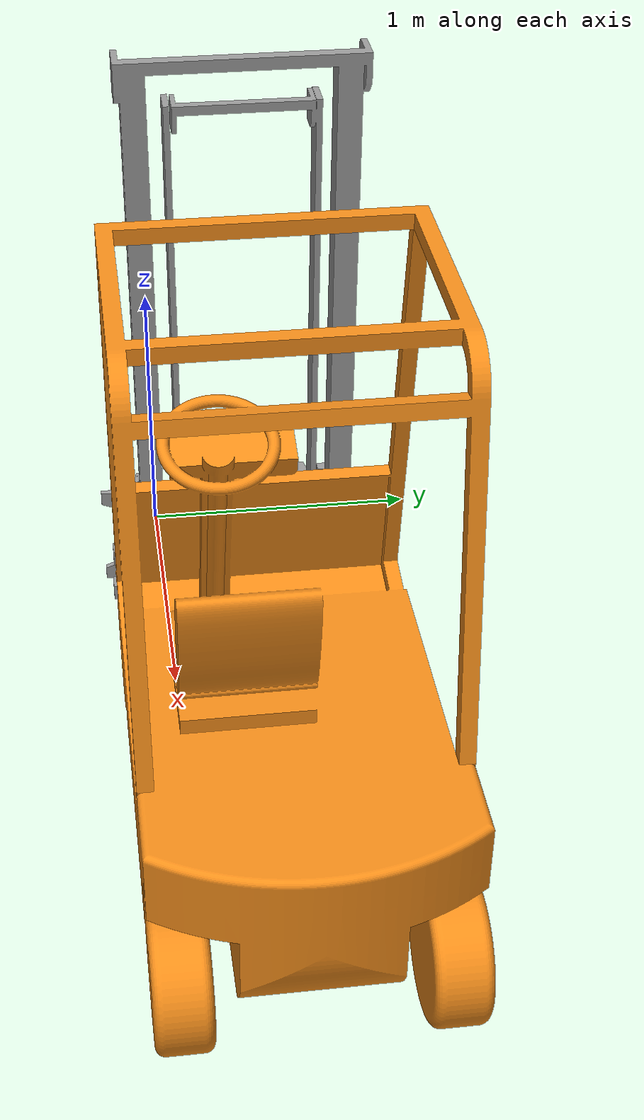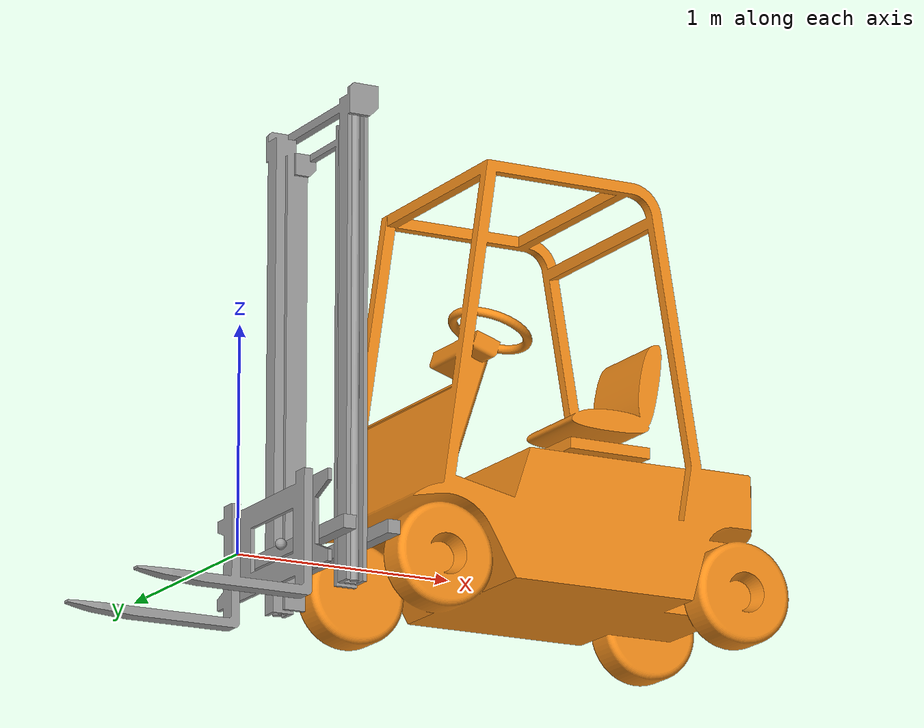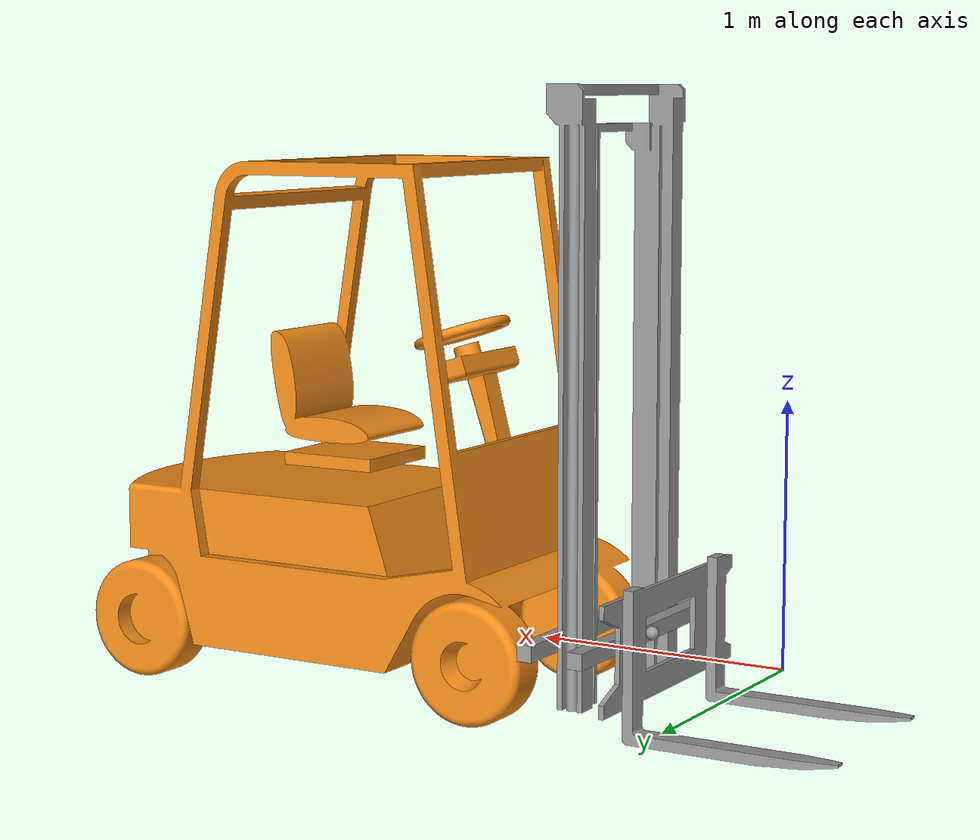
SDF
<?xml version='1.0'?>
<sdf version='1.6'>
  <model name='forklift'>
  <plugin name="ForkLiftPlugin" filename="libForkLiftPlugin.so"/>
    <link name='link_1_clone'>
      <pose frame=''>-0.489405 -0.319301 -0.156667 0 -0 0</pose>
      <inertial>
        <mass>5</mass>
        <inertia>
          <ixx>0.166667</ixx>
          <ixy>0</ixy>
          <ixz>0</ixz>
          <iyy>0.166667</iyy>
          <iyz>0</iyz>
          <izz>0.166667</izz>
        </inertia>
        <pose frame=''>0 0 0 0 -0 0</pose>
      </inertial>
      <self_collide>0</self_collide>
      <kinematic>0</kinematic>
      <gravity>1</gravity>
      <visual name='visual'>
        <pose frame=''>0 0 0 0 -0 0</pose>
        <geometry>
          <mesh>
            <uri>stl/Channel.stl</uri>
            <scale>0.001 0.001 0.001</scale>
          </mesh>
        </geometry>
        <material>
          <lighting>1</lighting>
          <script>
            <uri>file://media/materials/scripts/gazebo.material</uri>
            <name>Gazebo/Grey</name>
          </script>
          <ambient>0.3 0.3 0.3 1</ambient>
          <diffuse>0.7 0.7 0.7 1</diffuse>
          <specular>0.01 0.01 0.01 1</specular>
          <emissive>0 0 0 1</emissive>
          <shader type='vertex'>
            <normal_map>__default__</normal_map>
          </shader>
        </material>
        <cast_shadows>1</cast_shadows>
        <transparency>0</transparency>
      </visual>
      <collision name='collision'>
        <laser_retro>0</laser_retro>
        <max_contacts>10</max_contacts>
        <pose frame=''>0 0 0 0 -0 0</pose>
        <geometry>
          <mesh>
            <uri>stl/Channel.stl</uri>
          </mesh>
        </geometry>
        <surface>
          <friction>
            <ode>
              <mu>1</mu>
              <mu2>1</mu2>
              <fdir1>0 0 0</fdir1>
              <slip1>0</slip1>
              <slip2>0</slip2>
            </ode>
            <torsional>
              <coefficient>1</coefficient>
              <patch_radius>0</patch_radius>
              <surface_radius>0</surface_radius>
              <use_patch_radius>1</use_patch_radius>
              <ode>
                <slip>0</slip>
              </ode>
            </torsional>
          </friction>
          <bounce>
            <restitution_coefficient>0</restitution_coefficient>
            <threshold>1e+06</threshold>
          </bounce>
          <contact>
            <collide_without_contact>0</collide_without_contact>
            <collide_without_contact_bitmask>1</collide_without_contact_bitmask>
            <collide_bitmask>1</collide_bitmask>
            <ode>
              <soft_cfm>0</soft_cfm>
              <soft_erp>0.2</soft_erp>
              <kp>1e+13</kp>
              <kd>1</kd>
              <max_vel>0.01</max_vel>
              <min_depth>0</min_depth>
            </ode>
            <bullet>
              <split_impulse>1</split_impulse>
              <split_impulse_penetration_threshold>-0.01</split_impulse_penetration_threshold>
              <soft_cfm>0</soft_cfm>
              <soft_erp>0.2</soft_erp>
              <kp>1e+13</kp>
              <kd>1</kd>
            </bullet>
          </contact>
        </surface>
      </collision>
    </link>
    <link name='link_2_clone'>
      <pose frame=''>-0.609405 -0.319301 -0.156667 0 -0 0</pose>
      <inertial>
        <mass>2</mass>
        <inertia>
          <ixx>0.166667</ixx>
          <ixy>0</ixy>
          <ixz>0</ixz>
          <iyy>0.166667</iyy>
          <iyz>0</iyz>
          <izz>0.166667</izz>
        </inertia>
        <pose frame=''>0 0 0 0 -0 0</pose>
      </inertial>
      <self_collide>0</self_collide>
      <kinematic>0</kinematic>
      <gravity>1</gravity>
      <visual name='visual'>
        <pose frame=''>0 0 0 0 -0 0</pose>
        <geometry>
          <mesh>
            <uri>stl/Fork.stl</uri>
            <scale>0.001 0.001 0.001</scale>
          </mesh>
        </geometry>
        <material>
          <lighting>1</lighting>
          <script>
            <uri>file://media/materials/scripts/gazebo.material</uri>
            <name>Gazebo/Grey</name>
          </script>
          <ambient>0.3 0.3 0.3 1</ambient>
          <diffuse>0.7 0.7 0.7 1</diffuse>
          <specular>0.01 0.01 0.01 1</specular>
          <emissive>0 0 0 1</emissive>
          <shader type='vertex'>
            <normal_map>__default__</normal_map>
          </shader>
        </material>
        <cast_shadows>1</cast_shadows>
        <transparency>0</transparency>
      </visual>
      <collision name='collision'>
        <laser_retro>0</laser_retro>
        <max_contacts>10</max_contacts>
        <pose frame=''>0 0 0 0 -0 0</pose>
        <geometry>
          <mesh>
            <uri>stl/Fork.stl</uri>
          </mesh>
        </geometry>
        <surface>
          <friction>
            <ode>
              <mu>1</mu>
              <mu2>1</mu2>
              <fdir1>0 0 0</fdir1>
              <slip1>0</slip1>
              <slip2>0</slip2>
            </ode>
            <torsional>
              <coefficient>1</coefficient>
              <patch_radius>0</patch_radius>
              <surface_radius>0</surface_radius>
              <use_patch_radius>1</use_patch_radius>
              <ode>
                <slip>0</slip>
              </ode>
            </torsional>
          </friction>
          <bounce>
            <restitution_coefficient>0</restitution_coefficient>
            <threshold>1e+06</threshold>
          </bounce>
          <contact>
            <collide_without_contact>0</collide_without_contact>
            <collide_without_contact_bitmask>1</collide_without_contact_bitmask>
            <collide_bitmask>1</collide_bitmask>
            <ode>
              <soft_cfm>0</soft_cfm>
              <soft_erp>0.2</soft_erp>
              <kp>1e+13</kp>
              <kd>1</kd>
              <max_vel>0.01</max_vel>
              <min_depth>0</min_depth>
            </ode>
            <bullet>
              <split_impulse>1</split_impulse>
              <split_impulse_penetration_threshold>-0.01</split_impulse_penetration_threshold>
              <soft_cfm>0</soft_cfm>
              <soft_erp>0.2</soft_erp>
              <kp>1e+13</kp>
              <kd>1</kd>
            </bullet>
          </contact>
        </surface>
      </collision>
    </link>
    <link name='link_3_clone'>
      <pose frame=''>-0.339405 -0.319301 -0.156667 0 -0 0</pose>
      <inertial>
        <mass>30</mass>
        <inertia>
          <ixx>0.166667</ixx>
          <ixy>0</ixy>
          <ixz>0</ixz>
          <iyy>0.166667</iyy>
          <iyz>0</iyz>
          <izz>0.166667</izz>
        </inertia>
        <pose frame=''>0 0 0 0 -0 0</pose>
      </inertial>
      <self_collide>0</self_collide>
      <kinematic>0</kinematic>
      <gravity>1</gravity>
      <visual name='visual'>
        <pose frame=''>0 0 0 0 -0 0</pose>
        <geometry>
          <mesh>
            <uri>stl/Body.stl</uri>
            <scale>0.001 0.001 0.001</scale>
          </mesh>
        </geometry>
        <material>
          <lighting>1</lighting>
          <script>
            <uri>file://media/materials/scripts/gazebo.material</uri>
            <name>Gazebo/Orange</name>
          </script>
          <ambient>0.3 0.3 0.3 1</ambient>
          <diffuse>0.7 0.7 0.7 1</diffuse>
          <specular>0.01 0.01 0.01 1</specular>
          <emissive>0 0 0 1</emissive>
          <shader type='vertex'>
            <normal_map>__default__</normal_map>
          </shader>
        </material>
        <cast_shadows>0</cast_shadows>
        <transparency>0</transparency>
      </visual>
      <collision name='collision'>
        <laser_retro>0</laser_retro>
        <max_contacts>10</max_contacts>
        <pose frame=''>0 0 0 0 -0 0</pose>
        <geometry>
          <mesh>
            <uri>stl/Body.stl</uri>
          </mesh>
        </geometry>
        <surface>
          <friction>
            <ode>
              <mu>1</mu>
              <mu2>1</mu2>
              <fdir1>0 0 0</fdir1>
              <slip1>0</slip1>
              <slip2>0</slip2>
            </ode>
            <torsional>
              <coefficient>1</coefficient>
              <patch_radius>0</patch_radius>
              <surface_radius>0</surface_radius>
              <use_patch_radius>1</use_patch_radius>
              <ode>
                <slip>0</slip>
              </ode>
            </torsional>
          </friction>
          <bounce>
            <restitution_coefficient>0</restitution_coefficient>
            <threshold>1e+06</threshold>
          </bounce>
          <contact>
            <collide_without_contact>0</collide_without_contact>
            <collide_without_contact_bitmask>1</collide_without_contact_bitmask>
            <collide_bitmask>1</collide_bitmask>
            <ode>
              <soft_cfm>0</soft_cfm>
              <soft_erp>0.2</soft_erp>
              <kp>1e+13</kp>
              <kd>1</kd>
              <max_vel>0.01</max_vel>
              <min_depth>0</min_depth>
            </ode>
            <bullet>
              <split_impulse>1</split_impulse>
              <split_impulse_penetration_threshold>-0.01</split_impulse_penetration_threshold>
              <soft_cfm>0</soft_cfm>
              <soft_erp>0.2</soft_erp>
              <kp>1e+13</kp>
              <kd>1</kd>
            </bullet>
          </contact>
        </surface>
      </collision>
    </link>
    <link name='link_4'>
      <pose frame=''>0.430595 0.315282 0.153333 0 -0 0</pose>
      <inertial>
        <mass>1</mass>
        <inertia>
          <ixx>0.166667</ixx>
          <ixy>0</ixy>
          <ixz>0</ixz>
          <iyy>0.166667</iyy>
          <iyz>0</iyz>
          <izz>0.166667</izz>
        </inertia>
        <pose frame=''>0 0 0 0 -0 0</pose>
      </inertial>
      <gravity>1</gravity>
      <self_collide>0</self_collide>
      <kinematic>0</kinematic>
      <visual name='visual'>
        <pose frame=''>0 0 0 0 -0 0</pose>
        <geometry>
          <box>
            <size>0.06 1 0.06</size>
          </box>
        </geometry>
        <material>
          <lighting>1</lighting>
          <script>
            <uri>file://media/materials/scripts/gazebo.material</uri>
            <name>Gazebo/Grey</name>
          </script>
          <ambient>0.3 0.3 0.3 1</ambient>
          <diffuse>0.7 0.7 0.7 1</diffuse>
          <specular>0.01 0.01 0.01 1</specular>
          <emissive>0 0 0 1</emissive>
          <shader type='vertex'>
            <normal_map>__default__</normal_map>
          </shader>
        </material>
        <cast_shadows>1</cast_shadows>
        <transparency>0</transparency>
      </visual>
      <collision name='collision'>
        <laser_retro>0</laser_retro>
        <max_contacts>10</max_contacts>
        <pose frame=''>0 0 0 0 -0 0</pose>
        <geometry>
          <box>
            <size>0.06 1 0.06</size>
          </box>
        </geometry>
        <surface>
          <friction>
            <ode>
              <mu>1</mu>
              <mu2>1</mu2>
              <fdir1>0 0 0</fdir1>
              <slip1>0</slip1>
              <slip2>0</slip2>
            </ode>
            <torsional>
              <coefficient>1</coefficient>
              <patch_radius>0</patch_radius>
              <surface_radius>0</surface_radius>
              <use_patch_radius>1</use_patch_radius>
              <ode>
                <slip>0</slip>
              </ode>
            </torsional>
          </friction>
          <bounce>
            <restitution_coefficient>0</restitution_coefficient>
            <threshold>1e+06</threshold>
          </bounce>
          <contact>
            <collide_without_contact>0</collide_without_contact>
            <collide_without_contact_bitmask>1</collide_without_contact_bitmask>
            <collide_bitmask>1</collide_bitmask>
            <ode>
              <soft_cfm>0</soft_cfm>
              <soft_erp>0.2</soft_erp>
              <kp>1e+13</kp>
              <kd>1</kd>
              <max_vel>0.01</max_vel>
              <min_depth>0</min_depth>
            </ode>
            <bullet>
              <split_impulse>1</split_impulse>
              <split_impulse_penetration_threshold>-0.01</split_impulse_penetration_threshold>
              <soft_cfm>0</soft_cfm>
              <soft_erp>0.2</soft_erp>
              <kp>1e+13</kp>
              <kd>1</kd>
            </bullet>
          </contact>
        </surface>
      </collision>
    </link>
    <link name='link_4_clone'>
      <pose frame=''>0.637025 0.306663 0.153333 0 -0 0</pose>
      <inertial>
        <mass>1</mass>
        <inertia>
          <ixx>0.166667</ixx>
          <ixy>0</ixy>
          <ixz>0</ixz>
          <iyy>0.166667</iyy>
          <iyz>0</iyz>
          <izz>0.166667</izz>
        </inertia>
        <pose frame=''>0 0 0 0 -0 0</pose>
      </inertial>
      <self_collide>0</self_collide>
      <kinematic>0</kinematic>
      <gravity>1</gravity>
      <visual name='visual'>
        <pose frame=''>0 0 0 0 -0 0</pose>
        <geometry>
          <box>
            <size>0.06 1 0.06</size>
          </box>
        </geometry>
        <material>
          <lighting>1</lighting>
          <script>
            <uri>file://media/materials/scripts/gazebo.material</uri>
            <name>Gazebo/Grey</name>
          </script>
          <ambient>0.3 0.3 0.3 1</ambient>
          <diffuse>0.7 0.7 0.7 1</diffuse>
          <specular>0.01 0.01 0.01 1</specular>
          <emissive>0 0 0 1</emissive>
          <shader type='vertex'>
            <normal_map>__default__</normal_map>
          </shader>
        </material>
        <cast_shadows>1</cast_shadows>
        <transparency>0</transparency>
      </visual>
      <collision name='collision'>
        <laser_retro>0</laser_retro>
        <max_contacts>10</max_contacts>
        <pose frame=''>0 0 0 0 -0 0</pose>
        <geometry>
          <box>
            <size>0.06 1 0.06</size>
          </box>
        </geometry>
        <surface>
          <friction>
            <ode>
              <mu>1</mu>
              <mu2>1</mu2>
              <fdir1>0 0 0</fdir1>
              <slip1>0</slip1>
              <slip2>0</slip2>
            </ode>
            <torsional>
              <coefficient>1</coefficient>
              <patch_radius>0</patch_radius>
              <surface_radius>0</surface_radius>
              <use_patch_radius>1</use_patch_radius>
              <ode>
                <slip>0</slip>
              </ode>
            </torsional>
          </friction>
          <bounce>
            <restitution_coefficient>0</restitution_coefficient>
            <threshold>1e+06</threshold>
          </bounce>
          <contact>
            <collide_without_contact>0</collide_without_contact>
            <collide_without_contact_bitmask>1</collide_without_contact_bitmask>
            <collide_bitmask>1</collide_bitmask>
            <ode>
              <soft_cfm>0</soft_cfm>
              <soft_erp>0.2</soft_erp>
              <kp>1e+13</kp>
              <kd>1</kd>
              <max_vel>0.01</max_vel>
              <min_depth>0</min_depth>
            </ode>
            <bullet>
              <split_impulse>1</split_impulse>
              <split_impulse_penetration_threshold>-0.01</split_impulse_penetration_threshold>
              <soft_cfm>0</soft_cfm>
              <soft_erp>0.2</soft_erp>
              <kp>1e+13</kp>
              <kd>1</kd>
            </bullet>
          </contact>
        </surface>
      </collision>
    </link>
    <link name='link_5'>
      <pose frame=''>0.370595 0.335958 0.163333 0 -0 0</pose>
      <inertial>
        <mass>1</mass>
        <inertia>
          <ixx>0.1</ixx>
          <ixy>0</ixy>
          <ixz>0</ixz>
          <iyy>0.1</iyy>
          <iyz>0</iyz>
          <izz>0.1</izz>
        </inertia>
        <pose frame=''>0 0 0 0 -0 0</pose>
      </inertial>
      <gravity>1</gravity>
      <self_collide>0</self_collide>
      <kinematic>0</kinematic>
      <visual name='visual'>
        <pose frame=''>0 0 0 0 -0 0</pose>
        <geometry>
          <sphere>
            <radius>0.025</radius>
          </sphere>
        </geometry>
        <material>
          <lighting>1</lighting>
          <script>
            <uri>file://media/materials/scripts/gazebo.material</uri>
            <name>Gazebo/Grey</name>
          </script>
          <ambient>0.3 0.3 0.3 1</ambient>
          <diffuse>0.7 0.7 0.7 1</diffuse>
          <specular>0.01 0.01 0.01 1</specular>
          <emissive>0 0 0 1</emissive>
          <shader type='vertex'>
            <normal_map>__default__</normal_map>
          </shader>
        </material>
        <cast_shadows>1</cast_shadows>
        <transparency>0</transparency>
      </visual>
      <collision name='collision'>
        <laser_retro>0</laser_retro>
        <max_contacts>10</max_contacts>
        <pose frame=''>0 0 0 0 -0 0</pose>
        <geometry>
          <sphere>
            <radius>0.025</radius>
          </sphere>
        </geometry>
        <surface>
          <friction>
            <ode>
              <mu>1</mu>
              <mu2>1</mu2>
              <fdir1>0 0 0</fdir1>
              <slip1>0</slip1>
              <slip2>0</slip2>
            </ode>
            <torsional>
              <coefficient>1</coefficient>
              <patch_radius>0</patch_radius>
              <surface_radius>0</surface_radius>
              <use_patch_radius>1</use_patch_radius>
              <ode>
                <slip>0</slip>
              </ode>
            </torsional>
          </friction>
          <bounce>
            <restitution_coefficient>0</restitution_coefficient>
            <threshold>1e+06</threshold>
          </bounce>
          <contact>
            <collide_without_contact>0</collide_without_contact>
            <collide_without_contact_bitmask>1</collide_without_contact_bitmask>
            <collide_bitmask>1</collide_bitmask>
            <ode>
              <soft_cfm>0</soft_cfm>
              <soft_erp>0.2</soft_erp>
              <kp>1e+13</kp>
              <kd>1</kd>
              <max_vel>0.01</max_vel>
              <min_depth>0</min_depth>
            </ode>
            <bullet>
              <split_impulse>1</split_impulse>
              <split_impulse_penetration_threshold>-0.01</split_impulse_penetration_threshold>
              <soft_cfm>0</soft_cfm>
              <soft_erp>0.2</soft_erp>
              <kp>1e+13</kp>
              <kd>1</kd>
            </bullet>
          </contact>
        </surface>
      </collision>
    </link>
    <joint name='link_1_clone_JOINT_2' type='prismatic'>
      <parent>link_1_clone</parent>
      <child>link_4</child>
      <pose frame=''>0 0 0 0 -0 0</pose>
      <axis>
        <xyz>1 0 0</xyz>
        <use_parent_model_frame>0</use_parent_model_frame>
        <limit>
          <lower>-1.79769e+308</lower>
          <upper>1.79769e+308</upper>
          <effort>-1</effort>
          <velocity>-1</velocity>
        </limit>
        <dynamics>
          <spring_reference>0</spring_reference>
          <spring_stiffness>0</spring_stiffness>
          <damping>0</damping>
        </dynamics>
      </axis>
      <physics>
        <ode>
          <limit>
            <cfm>0</cfm>
            <erp>0.2</erp>
          </limit>
          <suspension>
            <cfm>0</cfm>
            <erp>0.2</erp>
          </suspension>
        </ode>
      </physics>
    </joint>
    <joint name='link_3_clone_JOINT_0' type='fixed'>
      <parent>link_3_clone</parent>
      <child>link_4_clone</child>
      <pose frame=''>0 0 0 0 -0 0</pose>
      <physics>
        <ode>
          <limit>
            <cfm>0</cfm>
            <erp>0.2</erp>
          </limit>
          <suspension>
            <cfm>0</cfm>
            <erp>0.2</erp>
          </suspension>
        </ode>
      </physics>
    </joint>
    <joint name='link_4_JOINT_3' type='fixed'>
      <parent>link_4</parent>
      <child>link_5</child>
      <pose frame=''>0 0 0 0 -0 0</pose>
      <physics>
        <ode>
          <limit>
            <cfm>0</cfm>
            <erp>0.2</erp>
          </limit>
          <suspension>
            <cfm>0</cfm>
            <erp>0.2</erp>
          </suspension>
        </ode>
      </physics>
    </joint>
    <joint name='link_4_clone_JOINT_1' type='prismatic'>
      <parent>link_4_clone</parent>
      <child>link_1_clone</child>
      <pose frame=''>0 0 0 0 -0 0</pose>
      <axis>
        <xyz>1 0 0</xyz>
        <use_parent_model_frame>0</use_parent_model_frame>
        <limit>
          <lower>-1.79769e+308</lower>
          <upper>1.79769e+308</upper>
          <effort>-1</effort>
          <velocity>-1</velocity>
        </limit>
        <dynamics>
          <spring_reference>0</spring_reference>
          <spring_stiffness>0</spring_stiffness>
          <damping>0</damping>
          <friction>0</friction>
        </dynamics>
      </axis>
      <physics>
        <ode>
          <limit>
            <cfm>0</cfm>
            <erp>0.2</erp>
          </limit>
          <suspension>
            <cfm>0</cfm>
            <erp>0.2</erp>
          </suspension>
        </ode>
      </physics>
    </joint>
    <joint name='link_5_JOINT_4' type='revolute'>
      <parent>link_5</parent>
      <child>link_2_clone</child>
      <pose frame=''>0 0 0 0 -0 0</pose>
      <axis>
        <xyz>1 0 0</xyz>
        <use_parent_model_frame>0</use_parent_model_frame>
        <limit>
          <lower>-1.79769e+308</lower>
          <upper>1.79769e+308</upper>
          <effort>-1</effort>
          <velocity>-1</velocity>
        </limit>
        <dynamics>
          <spring_reference>0</spring_reference>
          <spring_stiffness>0</spring_stiffness>
          <damping>0</damping>
          <friction>0</friction>
        </dynamics>
      </axis>
      <physics>
        <ode>
          <limit>
            <cfm>0</cfm>
            <erp>0.2</erp>
          </limit>
          <suspension>
            <cfm>0</cfm>
            <erp>0.2</erp>
          </suspension>
        </ode>
      </physics>
    </joint>
    <static>0</static>
    <allow_auto_disable>1</allow_auto_disable>
  </model>
</sdf>
